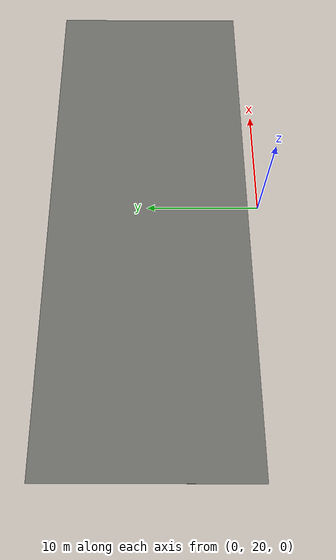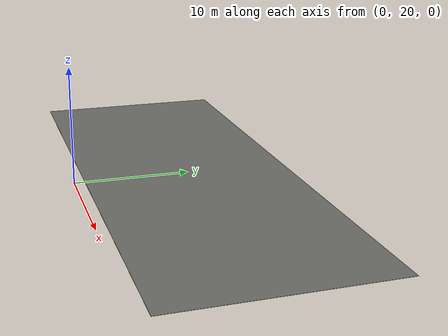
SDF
<?xml version="1.0" ?>
<sdf version="1.7">
  <model name="aws_robomaker_warehouse_DockYard_01">
    <static>true</static>
    <link name="link">
      <collision name="collision">
        <geometry><mesh><uri>model://aws_robomaker_warehouse_DockYard_01/meshes/aws_robomaker_warehouse_DockYard_01_collision.DAE</uri></mesh></geometry>
      </collision>
      <visual name="visual">
        <geometry><mesh><uri>model://aws_robomaker_warehouse_DockYard_01/meshes/aws_robomaker_warehouse_DockYard_01_visual.DAE</uri></mesh></geometry>
      </visual>
    </link>
  </model>
</sdf>
